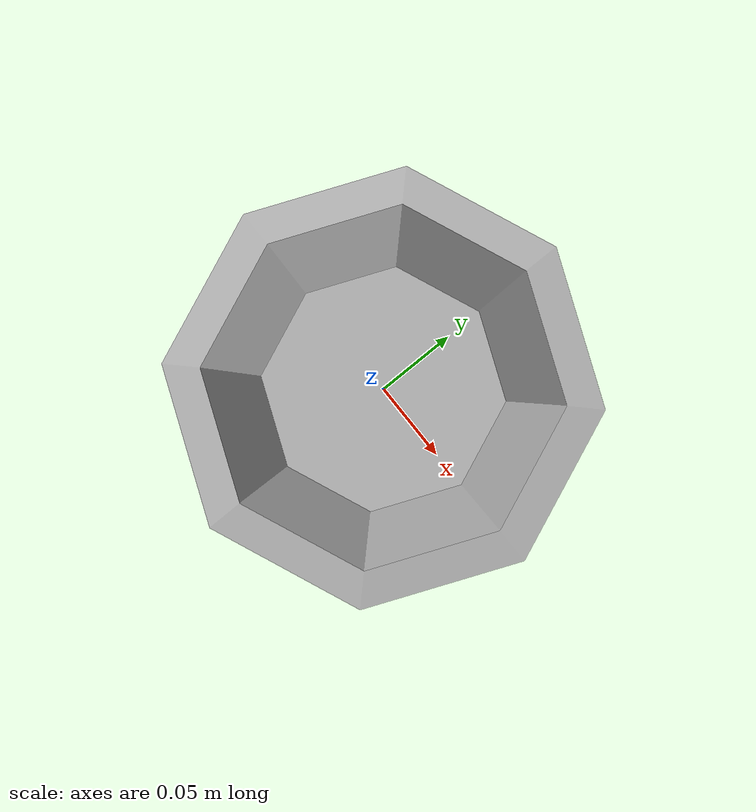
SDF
<?xml version="1.0" ?>
<sdf version="1.5">
  <model name="bowl_high">
    <link name="link">
      <inertial>
      <pose>0 0 0.035 0 0 0</pose>
        <mass>0.1</mass>
	  <inertia>
	    <ixx>0.000250308</ixx>
	    <ixy>0.0</ixy>
	    <ixz>0.0</ixz>
	    <iyy>0.000250308</iyy>
	    <iyz>0.0</iyz>
	    <izz>0.0004802</izz>
	  </inertia>
      </inertial>
      <collision name="collision">
        <geometry>
          <mesh>
            <uri>model://bowl_high/meshes/bowl_high.dae</uri>
          </mesh>
        </geometry>
      </collision>
      <visual name="visual">
        <geometry>
          <mesh>
            <uri>model://bowl_high/meshes/bowl_high.dae</uri>
          </mesh>
        </geometry>
      </visual>
    </link>
  </model>
</sdf>
